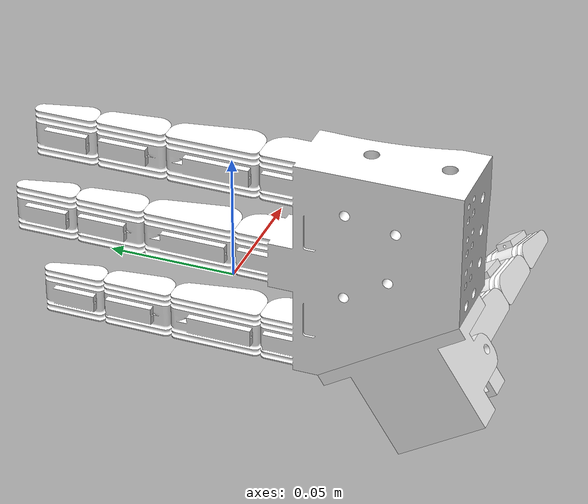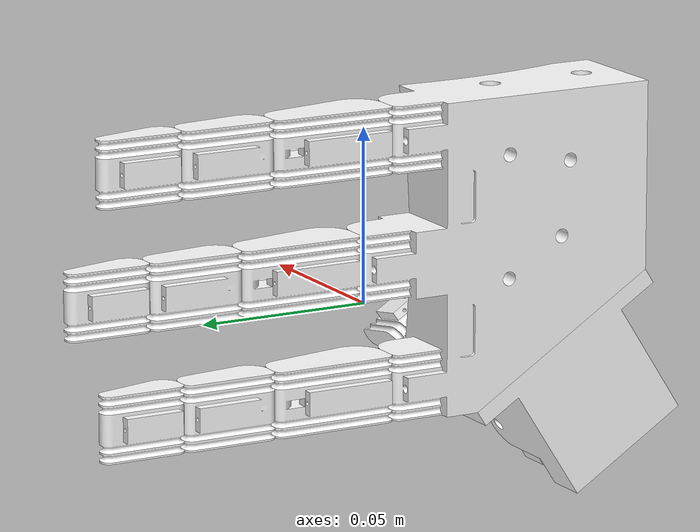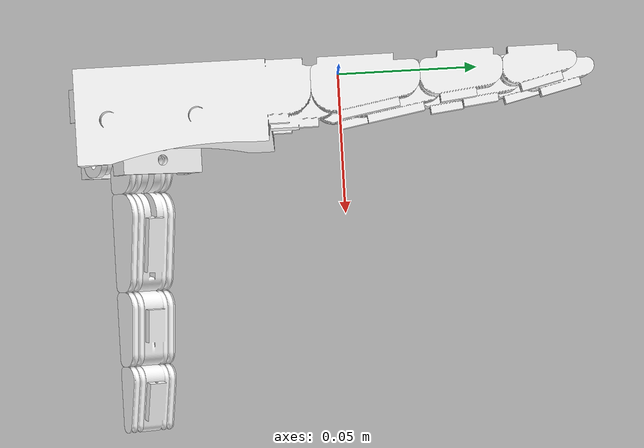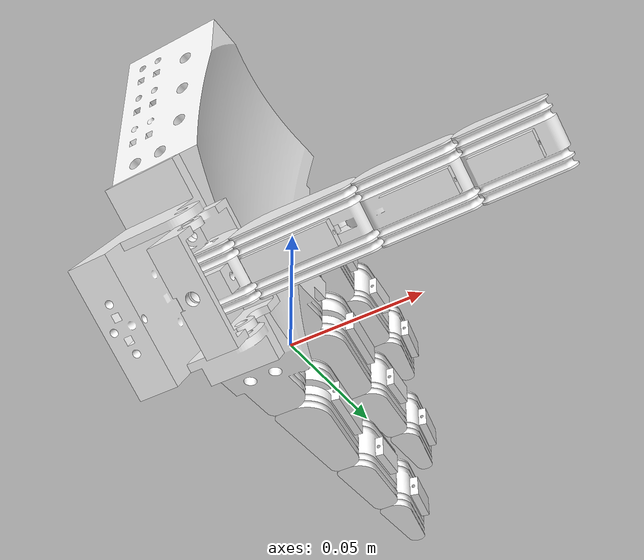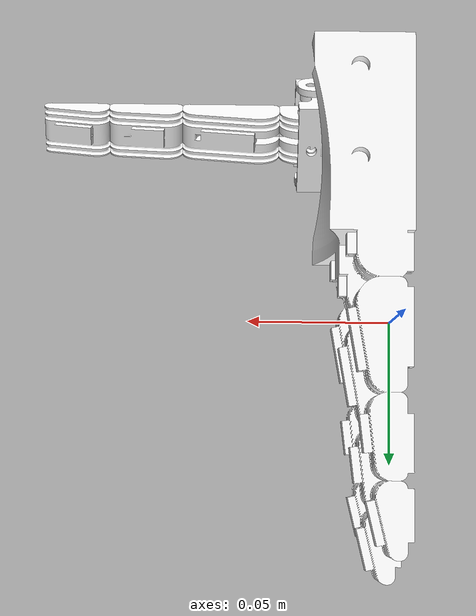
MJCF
<mujoco model="robot_hand_B">
    <compiler angle="radian" />
    <option collision="dynamic"/>
    <asset>
        <!-- Hand Palm -->
        <mesh name="hand_palm_mesh"
            file="old_thumb_stl/palm-prototype_hand-v1.2-2023-11-13.stl"
            scale="0.001 0.001 0.001"></mesh>

        <!-- Index Finger Components -->
        <mesh name="index_finger_prox_mesh"
            file="old_thumb_stl/finger_index_prox-prototype_hand-v1.2-2023-11-13.stl"
            scale="0.001 0.001 0.001"></mesh>
        <mesh name="index_finger_mid_mesh"
            file="old_thumb_stl/finger_index_mid-prototype_hand-v1.2-2023-11-13.stl"
            scale="0.001 0.001 0.001"></mesh>
        <mesh name="index_finger_top_mesh"
            file="old_thumb_stl/finger_index_top-prototype_hand-v1.2-2023-11-13.stl"
            scale="0.001 0.001 0.001"></mesh>

        <!-- Middle Finger Components -->
        <mesh name="middle_finger_prox_mesh"
            file="old_thumb_stl/finger_middle_prox-prototype_hand-v1.2-2023-11-13.stl"
            scale="0.001 0.001 0.001"></mesh>
        <mesh name="middle_finger_mid_mesh"
            file="old_thumb_stl/finger_middle_mid-prototype_hand-v1.2-2023-11-13.stl"
            scale="0.001 0.001 0.001"></mesh>
        <mesh name="middle_finger_top_mesh"
            file="old_thumb_stl/finger_middle_top-prototype_hand-v1.2-2023-11-13.stl"
            scale="0.001 0.001 0.001"></mesh>

        <!-- Pinky Finger Components -->
        <mesh name="pinky_finger_prox_mesh"
            file="old_thumb_stl/finger_pinky_prox-prototype_hand-v1.2-2023-11-13.stl"
            scale="0.001 0.001 0.001"></mesh>
        <mesh name="pinky_finger_mid_mesh"
            file="old_thumb_stl/finger_pinky_mid-prototype_hand-v1.2-2023-11-13.stl"
            scale="0.001 0.001 0.001"></mesh>
        <mesh name="pinky_finger_top_mesh"
            file="old_thumb_stl/finger_pinky_top-prototype_hand-v1.2-2023-11-13.stl"
            scale="0.001 0.001 0.001"></mesh>

        <!-- Thumb Components -->
        <mesh name="thumb_palm_attachement_mesh"
            file="old_thumb_stl/thumb_palm_attachment.stl"
            scale="0.001 0.001 0.001"></mesh>

        <mesh name="thumb_flexion_extension_mesh"
            file="old_thumb_stl/thumb_flexion_extension.stl"
            scale="0.001 0.001 0.001"></mesh>

        <mesh name="thumb_upper_finger_base_mesh"
            file="old_thumb_stl/thumb_upper_finger_base.stl"
            scale="0.001 0.001 0.001"></mesh>

        <mesh name="thumb_prox_mesh"
            file="old_thumb_stl/thumb_finger_prox.stl"
            scale="0.001 0.001 0.001"></mesh>

        <mesh name="thumb_mid_mesh"
            file="old_thumb_stl/thumb_finger_mid.stl"
            scale="0.001 0.001 0.001"></mesh>

        <mesh name="thumb_top_mesh"
            file="old_thumb_stl/thumb_finger_top.stl"
            scale="0.001 0.001 0.001"></mesh>

    </asset>

    <default>
        <!-- use same geom params as the Shadow Hand model in IsaacGymEnv for now -->
        <geom rgba="1 1 1 1" type="mesh" density="662" friction="1 0.005 0.001" condim="3" margin="0.0005" contype="1" conaffinity="1"/>
        <!-- use same joint params as IsaacGymEnv for now -->
        <!-- TODO: joint damping and position control kp should eventually be set to sysID'ed values -->
        <joint type="hinge" limited="true" damping="0.05" armature="0.001" margin="0.01" frictionloss="0.001" />
        <!-- actuator configuration -->
        <position ctrllimited="true" forcelimited="true" forcerange="-1 1" kp="2."/>
        <!-- the tendon which limits the two joints creating the rolling joint should be very limited in its length range -->
        <tendon limited="true" range="-0.001 0.001"/>
    </default>

    <worldbody>

        <body name="hand_palm">
            <geom type="mesh" mesh="hand_palm_mesh" contype = "1" conaffinity = "0"></geom>

            <!-- Index Finger -->
            <body name="index_finger_prox_virt">
                <joint name="index_finger_prox_virt_joint" axis="0 0 -1" pos="0.00800 -0.01800 0.03550" range="0 0.83"></joint>
                <inertial pos="0 0 0" mass="0.001" diaginertia="4E-10 4E-10 3E-10" />

                <body name="index_finger_prox">
                    <joint name="index_finger_prox_joint" axis="0 0 -1" pos="0.00800 -0.00200 0.03550" range="0 0.83"></joint>
                    <geom type="mesh" mesh="index_finger_prox_mesh" contype = "1" conaffinity = "0"></geom>

                    <body name="index_finger_mid_virt">
                        <joint name="index_finger_mid_virt_joint" axis="0 0 -1" pos="0.006 0.02100 0.03550" range="0 0.96"></joint>
                        <inertial pos="0 0 0" mass="0.001" diaginertia="4E-10 4E-10 3E-10"/>

                        <body name="index_finger_mid">
                            <joint name="index_finger_mid_joint" axis="0 0 -1" pos="0.006 0.03300 0.03550" range="0 0.96"></joint>
                            <geom type="mesh" mesh="index_finger_mid_mesh"></geom>

                            <body name="index_finger_top_virt">
                                <joint name="index_finger_top_virt_joint" axis="0 0 -1" pos="0.005 0.05000 0.03550" range="0 0.68"></joint>
                                <inertial pos="0 0 0" mass="0.001" diaginertia="4E-10 4E-10 3E-10" />

                                <body name="index_finger_top">
                                    <joint name="index_finger_top_joint" axis="0 0 -1" pos="0.005 0.06000 0.03550" range="0 0.68"></joint>
                                    <geom type="mesh" mesh="index_finger_top_mesh"></geom>
                                </body>
                            </body>
                        </body>
                    </body>
                </body>
            </body>

            <!-- Middle Finger -->
            <body name="middle_finger_prox_virt">
                <joint name="middle_finger_prox_virt_joint" axis="0 0 -1" pos="0.008 -0.008 0" range="0 0.83"></joint>
                <inertial pos="0 0 0" mass="0.001" diaginertia="4E-10 4E-10 3E-10" />

                <body name="middle_finger_prox">
                    <joint name="middle_finger_prox_joint" axis="0 0 -1" pos="0.008 0.008 0" range="0 0.83"></joint>
                    <geom type="mesh" mesh="middle_finger_prox_mesh"></geom>

                    <body name="middle_finger_mid_virt">
                        <joint name="middle_finger_mid_virt_joint" axis="0 0 -1" pos="0.006 0.031 0" range="0 0.96"></joint>
                        <inertial pos="0 0 0" mass="0.001" diaginertia="4E-10 4E-10 3E-10" />

                        <body name="middle_finger_mid">
                            <joint name="middle_finger_mid_joint" axis="0 0 -1" pos="0.006 0.043 0" range="0 0.96"></joint>
                            <geom type="mesh" mesh="middle_finger_mid_mesh"></geom>

                            <body name="middle_finger_top_virt">
                                <joint name="middle_finger_top_virt_joint" axis="0 0 -1"
                                    pos="0.005 0.060 0" range="0 0.68"></joint>
                                <inertial pos="0 0 0" mass="0.001" diaginertia="4E-10 4E-10 3E-10" />

                                <body name="middle_finger_top">
                                    <joint name="middle_finger_top_joint" axis="0 0 -1" pos="0.005 0.070 0" range="0 0.68"></joint>
                                    <geom type="mesh" mesh="middle_finger_top_mesh"></geom>
                                </body>
                            </body>
                        </body>
                    </body>
                </body>

            </body>

            <!-- Pinky Finger -->
            <body name="pinky_finger_prox_virt">
                <joint name="pinky_finger_prox_virt_joint" axis="0 0 -1" pos="0.008 -0.018 -0.03550" range="0 0.83"></joint>
                <inertial pos="0 0 0" mass="0.001" diaginertia="4E-10 4E-10 3E-10" />

                <body name="pinky_finger_prox">
                    <joint name="pinky_finger_prox_joint" axis="0 0 -1" pos="0.008 -0.002 -0.03550" range="0 0.83"></joint>
                    <geom type="mesh" mesh="pinky_finger_prox_mesh" contype = "1" conaffinity = "0"></geom>

                    <body name="pinky_finger_mid_virt">
                        <joint name="pinky_finger_mid_virt_joint" axis="0 0 -1" pos="0.006 0.021 -0.03550" range="0 0.96"></joint>
                        <inertial pos="0 0 0" mass="0.001" diaginertia="4E-10 4E-10 3E-10" />

                        <body name="pinky_finger_mid">
                            <joint name="pinky_finger_mid_joint" axis="0 0 -1" pos="0.006 0.033 -0.03550" range="0 0.96"></joint>
                            <geom type="mesh" mesh="pinky_finger_mid_mesh"></geom>

                            <body name="pinky_finger_top_virt">
                                <joint name="pinky_finger_top_virt_joint" axis="0 0 -1"
                                    pos="0.005 0.050 0" range="0 0.68"></joint>
                                <inertial pos="0 0 0" mass="0.001" diaginertia="4E-10 4E-10 3E-10" />

                                <body name="pinky_finger_top">
                                    <joint name="pinky_finger_top_joint" axis="0 0 -1" pos="0.005 0.060 -0.03550" range="0 0.68"></joint>
                                    <geom type="mesh" mesh="pinky_finger_top_mesh"></geom>
                                </body>
                            </body>
                        </body>
                    </body>
                </body>
            </body>

            <!-- Thumb -->
            <body name="thumb_palm_attachement">
                <geom type="mesh" mesh="thumb_palm_attachement_mesh" contype ="1" conaffinity = "0"></geom>

                <body name="thumb_flexion_extension">
                    <joint name="thumb_flexion_extension_joint" type="hinge" axis="0.0 -0.84 0.54" pos="0.0262 -0.060889 -0.048065" range="-0.87 0.87"></joint>
                    <geom type="mesh" mesh="thumb_flexion_extension_mesh" contype ="1" conaffinity = "0"></geom>

                    <body name="thumb_upper_finger_base">
                        <joint name="thumb_adduction_abduction_joint" type="hinge" axis="0.0 -0.535 -0.845" pos="0.02620 -0.067708 -0.026184" range="-0.7 0.7"></joint>
                        <geom type="mesh" mesh="thumb_upper_finger_base_mesh"> </geom>

                        <body name="thumb_prox_virt">
                            <joint name="thumb_finger_prox_joint_virt" axis="0.0 -0.84 0.54" pos="0.02970 -0.06806 -0.043502" range="0 0.83"></joint>
                            <inertial pos="0 0 0" mass="0.001" diaginertia="4E-10 4E-10 3E-10" />

                            <body name="thumb_prox">
                                <joint name="thumb_finger_prox_joint" axis="0.0 -0.84 0.54" pos="0.0457 -0.06806 -0.043502" range="0 0.83"></joint>
                                <geom type="mesh" mesh="thumb_prox_mesh"></geom>

                                <body name="thumb_mid_virt">
                                    <joint name="thumb_finger_mid_joint_virt" axis="0.0 -0.84 0.54" pos="0.06870 -0.069134 -0.045189" range="0 0.83"></joint>
                                    <inertial pos="0 0 0" mass="0.001" diaginertia="4E-10 4E-10 3E-10" />

                                    <body name="thumb_mid">
                                        <joint name="thumb_finger_mid_joint" axis="0.0 -0.84 0.54" pos="0.0807 -0.069134 -0.045189" range="0 0.83"></joint>
                                        <geom type="mesh" mesh="thumb_mid_mesh"></geom>

                                        <body name="thumb_top_virt">
                                            <joint name="thumb_finger_top_joint_virt" axis="0.0 -0.84 0.54" pos="0.09770 -0.069671 -0.046033" range="0 0.83"></joint>
                                            <inertial pos="0 0 0" mass="0.001" diaginertia="4E-10 4E-10 3E-10" />

                                            <body name="thumb_top">
                                                <joint name="thumb_finger_top_joint" axis="0.0 -0.84 0.54" pos="0.10770 -0.069671 -0.046033" range="0 0.83"></joint>
                                                <geom type="mesh" mesh="thumb_top_mesh"></geom>
                                            </body>
                                        </body>
                                    </body>
                                </body>
                            </body>
                        </body>
                    </body>
                </body>
            </body>

        </body>

    </worldbody>

    <contact>
        <!-- neighboring bodies are excluded from contact calculation -->
        <exclude body1="hand_palm" body2="thumb_palm_attachement"/>
        <exclude body1="thumb_palm_attachement" body2="thumb_flexion_extension"/>
        <exclude body1="thumb_flexion_extension" body2="thumb_upper_finger_base"/>
        <exclude body1="hand_palm" body2="thumb_prox"/>  <!-- there seems to be somehow unintended collision here -->
        <exclude body1="thumb_prox" body2="thumb_mid"/>
        <exclude body1="thumb_mid" body2="thumb_top"/>

        <exclude body1="hand_palm" body2="index_finger_prox"/>
        <exclude body1="index_finger_prox" body2="index_finger_mid"/>
        <exclude body1="index_finger_top" body2="index_finger_top"/>

        <exclude body1="hand_palm" body2="middle_finger_prox"/>
        <exclude body1="middle_finger_prox" body2="middle_finger_mid"/>
        <exclude body1="middle_finger_mid" body2="middle_finger_top"/>

        <exclude body1="hand_palm" body2="pinky_finger_prox"/>
        <exclude body1="pinky_finger_prox" body2="pinky_finger_mid"/>
        <exclude body1="pinky_finger_mid" body2="pinky_finger_top"/>
    </contact>

    <actuator>
        <position name="thumb_flexion_extension_joint" joint="thumb_flexion_extension_joint" ctrlrange="-0.87 0.87" kp="1"/>
        <position name="thumb_adduction_abduction_joint" joint="thumb_adduction_abduction_joint" ctrlrange="-0.7 0.7" kp="1"/>
        <position name="thumb_finger_prox_joint" joint="thumb_finger_prox_joint" ctrlrange="0.0 0.84" kp="4"/>
        <position name="thumb_finger_mid_joint" joint="thumb_finger_mid_joint" ctrlrange="0.0 0.96" kp="4"/>
        <position name="index_finger_prox_joint" joint="index_finger_prox_joint" ctrlrange="0 0.84"/>
        <position name="index_finger_mid_joint" joint="index_finger_mid_joint" ctrlrange="0 0.96" kp="4"/>
        <position name="middle_finger_prox_joint" joint="middle_finger_prox_joint" ctrlrange="0 0.84"/>
        <position name="middle_finger_mid_joint" joint="middle_finger_mid_joint" ctrlrange="0 0.96" kp="4"/>
        <position name="pinky_finger_prox_joint" joint="pinky_finger_prox_joint" ctrlrange="0 0.84"/>
        <position name="pinky_finger_mid_joint" joint="pinky_finger_mid_joint" ctrlrange="0 0.96" kp="4"/>
    </actuator>

    <sensor>
        <jointpos name="thumb_flexion_extension_sens" joint="thumb_flexion_extension_joint"/>
        <jointpos name="thumb_adduction_abduction_sens" joint="thumb_adduction_abduction_joint"/>
        <jointpos name="thumb_finger_prox_sens" joint="thumb_finger_prox_joint"/>
        <jointpos name="thumb_finger_mid_sens" joint="thumb_finger_mid_joint"/>

        <jointpos name="index_finger_prox_sens" joint="index_finger_prox_joint"/>
        <jointpos name="index_finger_mid_sens" joint="index_finger_mid_joint"/>
        <jointpos name="index_finger_top_sens" joint="index_finger_top_joint" />

        <jointpos name="middle_finger_prox_sens" joint="middle_finger_prox_joint"/>
        <jointpos name="middle_finger_mid_sens" joint="middle_finger_mid_joint"/>
        <jointpos name="middle_finger_top_sens" joint="middle_finger_top_joint" />

        <jointpos name="pinky_finger_prox_sens" joint="pinky_finger_prox_joint"/>
        <jointpos name="pinky_finger_mid_sens" joint="pinky_finger_mid_joint"/>
        <jointpos name="pinky_finger_top_sens" joint="pinky_finger_top_joint" />
    </sensor>

    <tendon>

        <!-- Index finger -->
        <fixed name="index_root2index_pp">
            <joint joint="index_finger_prox_virt_joint" coef="1"/>
            <joint joint="index_finger_prox_joint" coef="-1"/>
        </fixed>
        <fixed name="index_index_pp2mp">
            <joint joint="index_finger_mid_virt_joint" coef="1"/>
            <joint joint="index_finger_mid_joint" coef="-1"/>
        </fixed>
        <fixed name="index_index_jointlink">
            <joint joint="index_finger_mid_joint" coef="0.71"/>
            <joint joint="index_finger_top_virt_joint" coef="-1"/>
        </fixed>
        <fixed name="index_index_mp2dp">
            <joint joint="index_finger_top_virt_joint" coef="1"/>
            <joint joint="index_finger_top_joint" coef="-1"/>
        </fixed>

        <!-- Middle finger -->
        <fixed name="middle_root2index_pp">
            <joint joint="middle_finger_prox_virt_joint" coef="1"/>
            <joint joint="middle_finger_prox_joint" coef="-1"/>
        </fixed>
        <fixed name="middle_index_pp2mp">
            <joint joint="middle_finger_mid_virt_joint" coef="1"/>
            <joint joint="middle_finger_mid_joint" coef="-1"/>
        </fixed>
        <fixed name="middle_index_jointlink">
            <joint joint="middle_finger_mid_joint" coef="0.71"/>
            <joint joint="middle_finger_top_virt_joint" coef="-1"/>
        </fixed>
        <fixed name="middle_index_mp2dp">
            <joint joint="middle_finger_top_virt_joint" coef="1"/>
            <joint joint="middle_finger_top_joint" coef="-1"/>
        </fixed>

        <!-- Pinky finger -->
        <fixed name="pinky_root2index_pp">
            <joint joint="pinky_finger_prox_virt_joint" coef="1"/>
            <joint joint="pinky_finger_prox_joint" coef="-1"/>
        </fixed>
        <fixed name="pinky_index_pp2mp">
            <joint joint="pinky_finger_mid_virt_joint" coef="1"/>
            <joint joint="pinky_finger_mid_joint" coef="-1"/>
        </fixed>
        <fixed name="pinky_index_jointlink">
            <joint joint="pinky_finger_mid_joint" coef="0.71"/>
            <joint joint="pinky_finger_top_virt_joint" coef="-1"/>
        </fixed>
        <fixed name="pinky_index_mp2dp">
            <joint joint="pinky_finger_top_virt_joint" coef="1"/>
            <joint joint="pinky_finger_top_joint" coef="-1"/>
        </fixed>

        <!-- Thumb -->
        <fixed name="thumb_root2index_pp">
            <joint joint="thumb_finger_prox_joint_virt" coef="1"/>
            <joint joint="thumb_finger_prox_joint" coef="-1"/>
        </fixed>
        <fixed name="thumb_index_pp2mp">
            <joint joint="thumb_finger_mid_joint_virt" coef="1"/>
            <joint joint="thumb_finger_mid_joint" coef="-1"/>
        </fixed>
        <fixed name="thumb_index_jointlink">
            <joint joint="thumb_finger_mid_joint" coef="0.71"/>
            <joint joint="thumb_finger_top_joint_virt" coef="-1"/>
        </fixed>
        <fixed name="thumb_index_mp2dp">
            <joint joint="thumb_finger_top_joint_virt" coef="1"/>
            <joint joint="thumb_finger_top_joint" coef="-1"/>
        </fixed>

    </tendon>

</mujoco>
